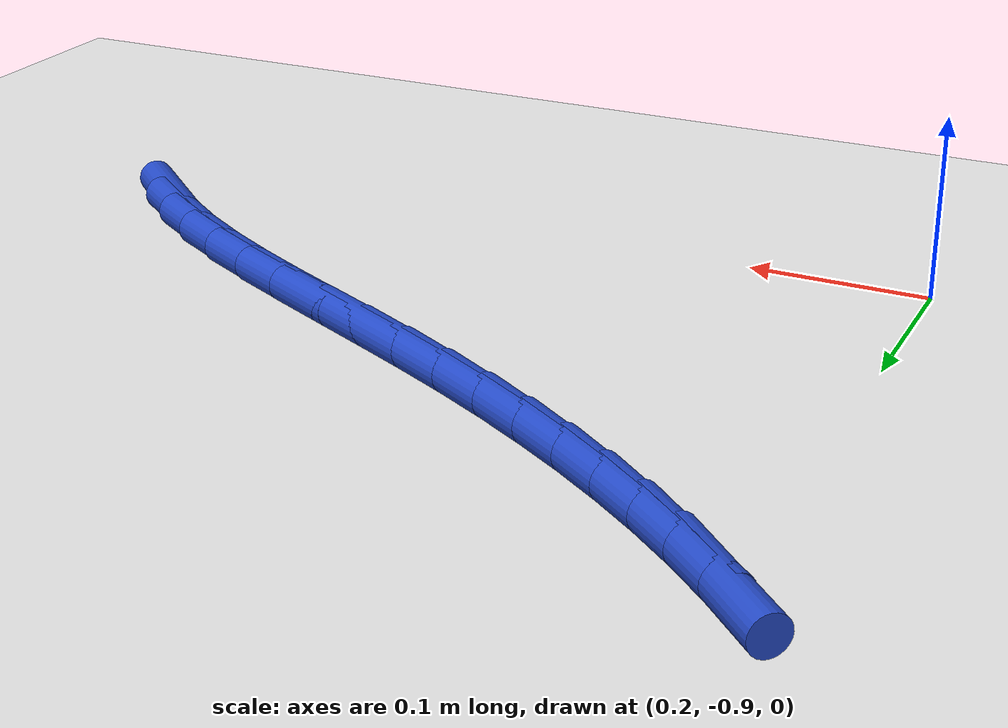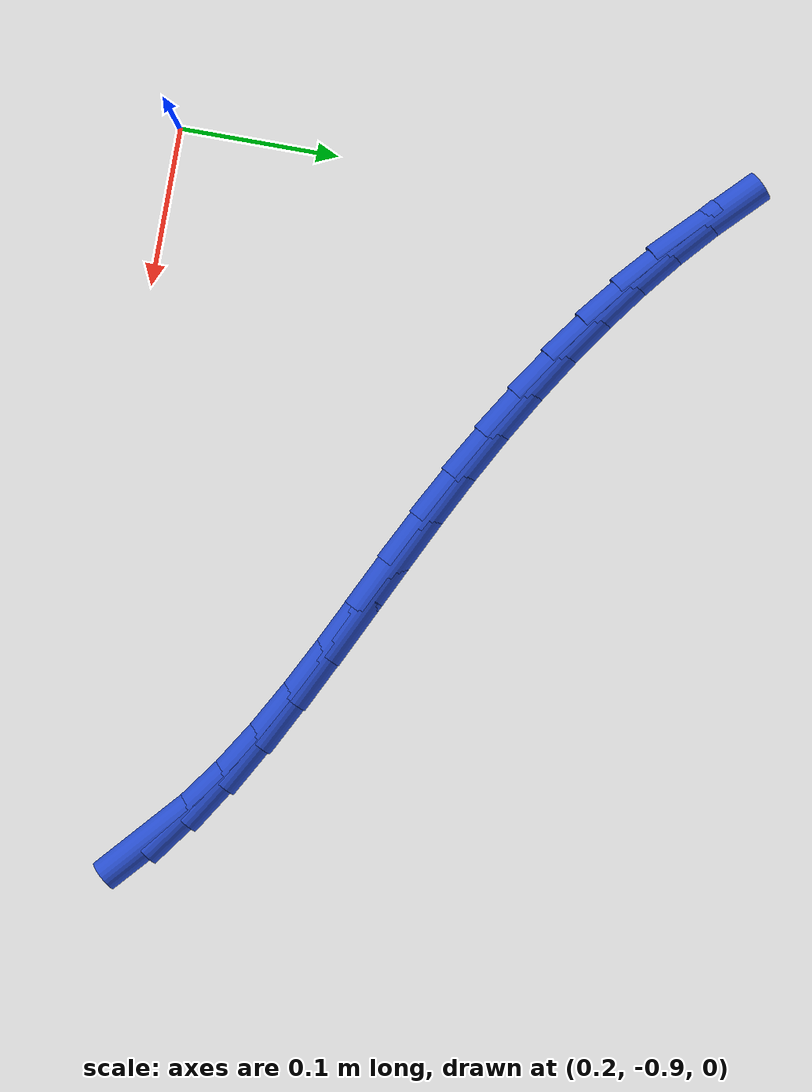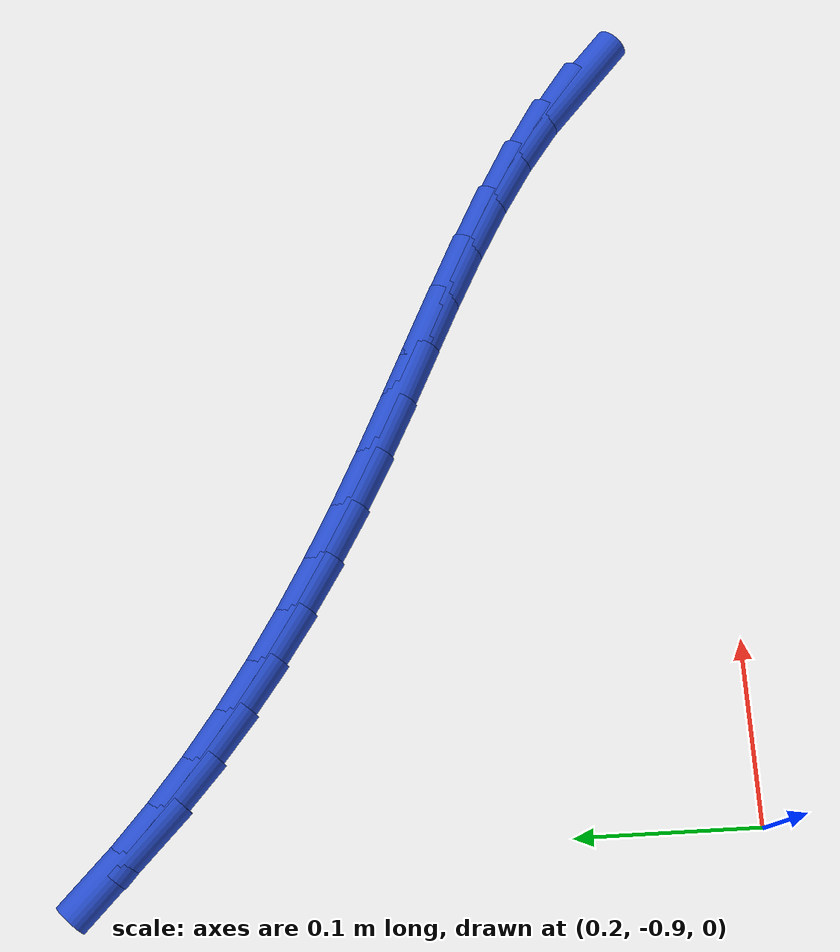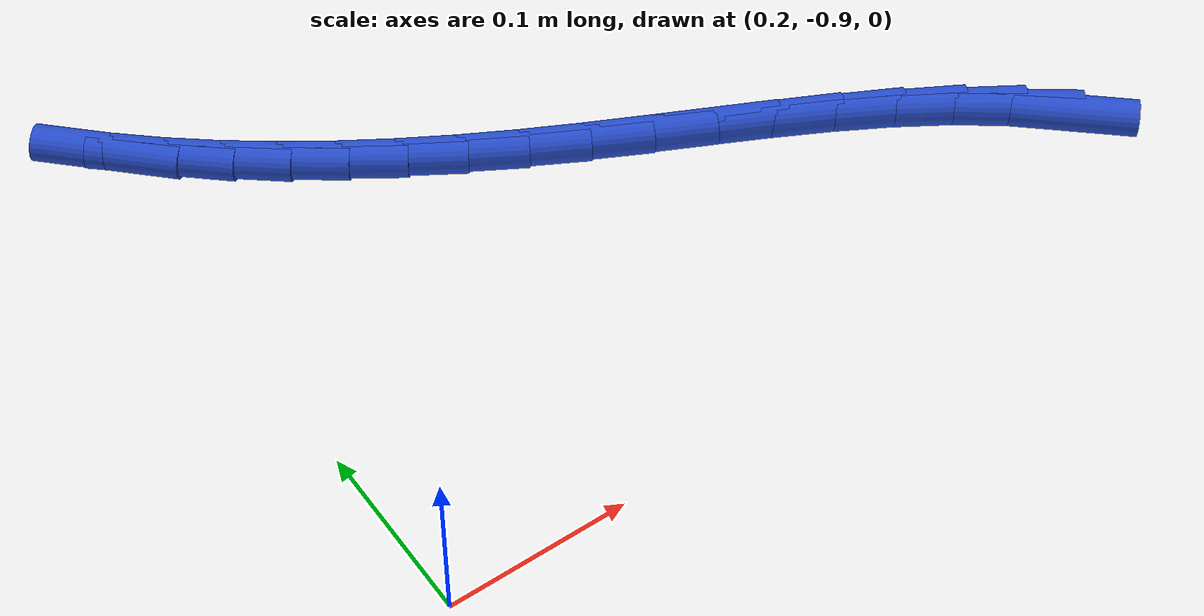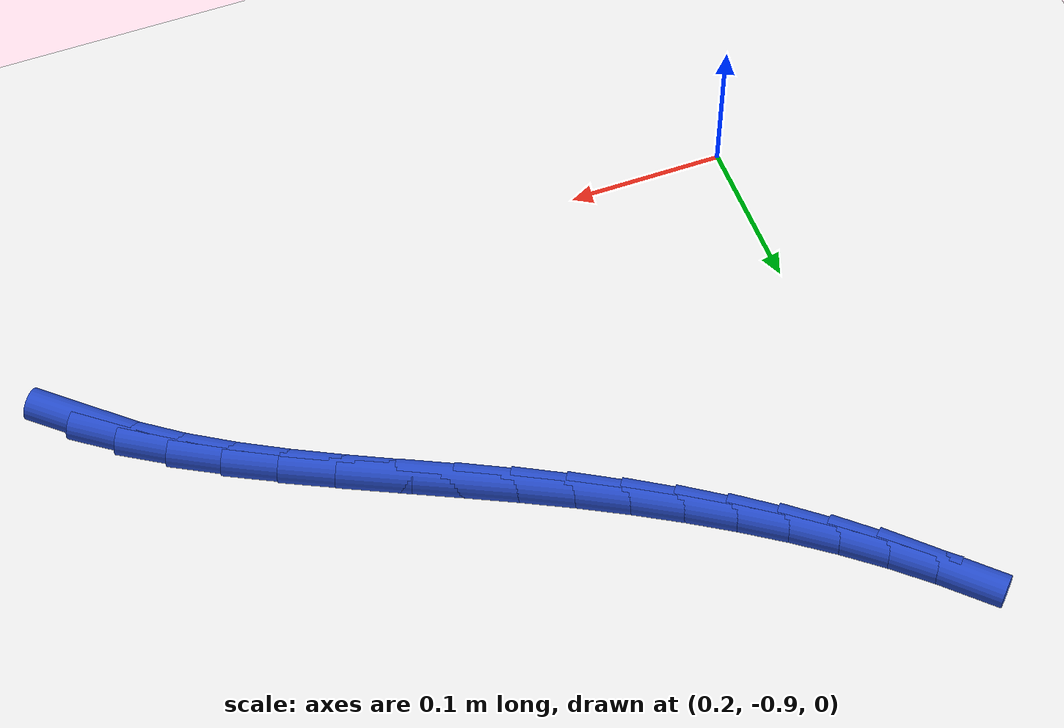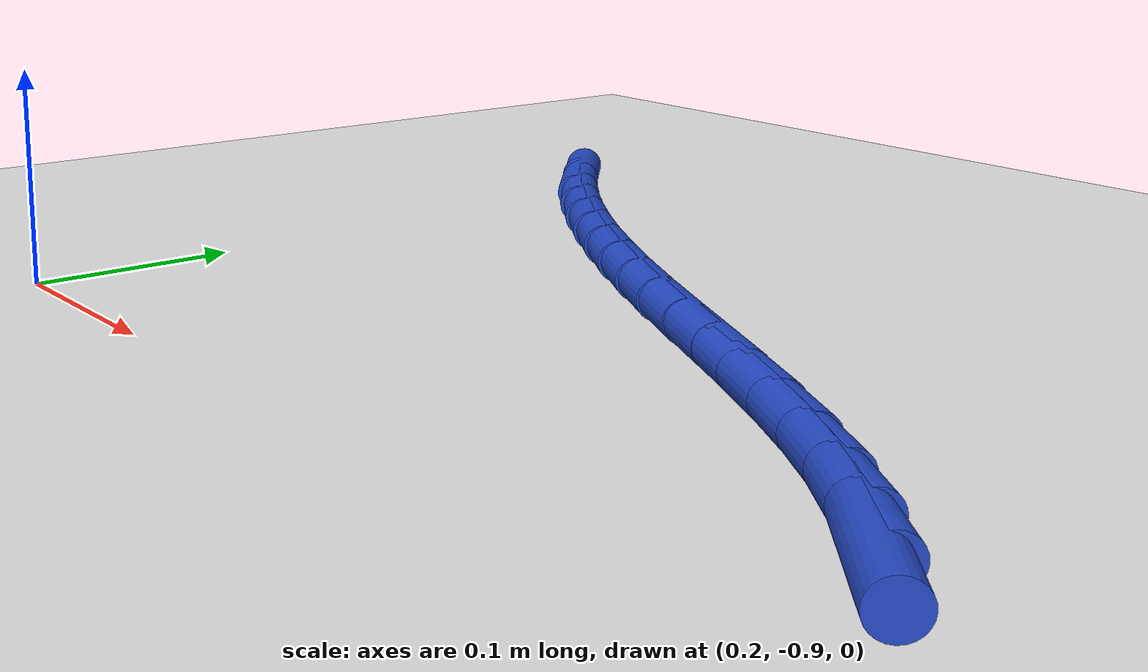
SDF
<sdf version="1.6">
 <world name="default">
  <model name="ground_plane">
   <static>1</static>
   <link name="link">
    <collision name="collision">
     <geometry><plane><normal>0 0 1</normal><size>100 100</size></plane></geometry>
     <surface><friction><ode><mu>100</mu><mu2>50</mu2></ode></friction></surface>
    </collision>
    <visual name="visual">
     <cast_shadows>0</cast_shadows>
     <geometry><plane><normal>0 0 1</normal><size>100 100</size></plane></geometry>
     <material>
      <script><uri>file://media/materials/scripts/gazebo.material</uri><name>Gazebo/WhiteGlow</name></script>
     </material>
    </visual>
   </link>
  </model>
  <model name="line">
   <link name="link_233">
    <pose>0.6339619889091002 -0.8356296457033241 0.01 0 1.57 -0.7258008129332177</pose>
    <collision name="collision">
     <geometry><cylinder><radius>0.01</radius><length>0.08</length></cylinder></geometry>
    </collision>
    <visual name="visual">
     <material>
      <script><name>Gazebo/Blue</name><uri>file://media/materials/scripts/gazebo.material</uri></script>
     </material>
     <geometry><cylinder><radius>0.01</radius><length>0.08</length></cylinder></geometry>
    </visual>
   </link>
   <link name="link_234">
    <pose>0.612295771971148 -0.8164034006389096 0.01 0 1.57 -0.6317629320676033</pose>
    <collision name="collision">
     <geometry><cylinder><radius>0.01</radius><length>0.08</length></cylinder></geometry>
    </collision>
    <visual name="visual">
     <material>
      <script><name>Gazebo/Blue</name><uri>file://media/materials/scripts/gazebo.material</uri></script>
     </material>
     <geometry><cylinder><radius>0.01</radius><length>0.08</length></cylinder></geometry>
    </visual>
   </link>
   <link name="link_235">
    <pose>0.5877244902974321 -0.798421686353868 0.01 0 1.57 -0.5616902228130584</pose>
    <collision name="collision">
     <geometry><cylinder><radius>0.01</radius><length>0.08</length></cylinder></geometry>
    </collision>
    <visual name="visual">
     <material>
      <script><name>Gazebo/Blue</name><uri>file://media/materials/scripts/gazebo.material</uri></script>
     </material>
     <geometry><cylinder><radius>0.01</radius><length>0.08</length></cylinder></geometry>
    </visual>
   </link>
   <link name="link_236">
    <pose>0.5607840354621415 -0.7814678796042983 0.01 0 1.57 -0.5112613267325246</pose>
    <collision name="collision">
     <geometry><cylinder><radius>0.01</radius><length>0.08</length></cylinder></geometry>
    </collision>
    <visual name="visual">
     <material>
      <script><name>Gazebo/Blue</name><uri>file://media/materials/scripts/gazebo.material</uri></script>
     </material>
     <geometry><cylinder><radius>0.01</radius><length>0.08</length></cylinder></geometry>
    </visual>
   </link>
   <link name="link_237">
    <pose>0.5320102990394692 -0.7653253571463029 0.01 0 1.57 -0.47718350887379835</pose>
    <collision name="collision">
     <geometry><cylinder><radius>0.01</radius><length>0.08</length></cylinder></geometry>
    </collision>
    <visual name="visual">
     <material>
      <script><name>Gazebo/Blue</name><uri>file://media/materials/scripts/gazebo.material</uri></script>
     </material>
     <geometry><cylinder><radius>0.01</radius><length>0.08</length></cylinder></geometry>
    </visual>
   </link>
   <link name="link_238">
    <pose>0.5019391726036035 -0.7497774957359811 0.01 0 1.57 -0.45723164717743753</pose>
    <collision name="collision">
     <geometry><cylinder><radius>0.01</radius><length>0.08</length></cylinder></geometry>
    </collision>
    <visual name="visual">
     <material>
      <script><name>Gazebo/Blue</name><uri>file://media/materials/scripts/gazebo.material</uri></script>
     </material>
     <geometry><cylinder><radius>0.01</radius><length>0.08</length></cylinder></geometry>
    </visual>
   </link>
   <link name="link_239">
    <pose>0.4711065477287374 -0.734607672129434 0.01 0 1.57 -0.4501454750513224</pose>
    <collision name="collision">
     <geometry><cylinder><radius>0.01</radius><length>0.08</length></cylinder></geometry>
    </collision>
    <visual name="visual">
     <material>
      <script><name>Gazebo/Blue</name><uri>file://media/materials/scripts/gazebo.material</uri></script>
     </material>
     <geometry><cylinder><radius>0.01</radius><length>0.08</length></cylinder></geometry>
    </visual>
   </link>
   <link name="link_240">
    <pose>0.4400483159890594 -0.719599263082762 0.01 0 1.57 -0.455540217057294</pose>
    <collision name="collision">
     <geometry><cylinder><radius>0.01</radius><length>0.08</length></cylinder></geometry>
    </collision>
    <visual name="visual">
     <material>
      <script><name>Gazebo/Blue</name><uri>file://media/materials/scripts/gazebo.material</uri></script>
     </material>
     <geometry><cylinder><radius>0.01</radius><length>0.08</length></cylinder></geometry>
    </visual>
   </link>
   <link name="link_241">
    <pose>0.4093003689587622 -0.7045356453520661 0.01 0 1.57 -0.4736247766920992</pose>
    <collision name="collision">
     <geometry><cylinder><radius>0.01</radius><length>0.08</length></cylinder></geometry>
    </collision>
    <visual name="visual">
     <material>
      <script><name>Gazebo/Blue</name><uri>file://media/materials/scripts/gazebo.material</uri></script>
     </material>
     <geometry><cylinder><radius>0.01</radius><length>0.08</length></cylinder></geometry>
    </visual>
   </link>
   <link name="link_242">
    <pose>0.3793866388876192 -0.6892038295251098 0.01 0 1.57 -0.49989533543147546</pose>
    <collision name="collision">
     <geometry><cylinder><radius>0.01</radius><length>0.08</length></cylinder></geometry>
    </collision>
    <visual name="visual">
     <material>
      <script><name>Gazebo/Blue</name><uri>file://media/materials/scripts/gazebo.material</uri></script>
     </material>
     <geometry><cylinder><radius>0.01</radius><length>0.08</length></cylinder></geometry>
    </visual>
   </link>
   <link name="link_243">
    <pose>0.3505758875670934 -0.6734683595401033 0.01 0 1.57 -0.5294613139137009</pose>
    <collision name="collision">
     <geometry><cylinder><radius>0.01</radius><length>0.08</length></cylinder></geometry>
    </collision>
    <visual name="visual">
     <material>
      <script><name>Gazebo/Blue</name><uri>file://media/materials/scripts/gazebo.material</uri></script>
     </material>
     <geometry><cylinder><radius>0.01</radius><length>0.08</length></cylinder></geometry>
    </visual>
   </link>
   <link name="link_244">
    <pose>0.32289229236792555 -0.6572680961261983 0.01 0 1.57 -0.5622320891232468</pose>
    <collision name="collision">
     <geometry><cylinder><radius>0.01</radius><length>0.08</length></cylinder></geometry>
    </collision>
    <visual name="visual">
     <material>
      <script><name>Gazebo/Blue</name><uri>file://media/materials/scripts/gazebo.material</uri></script>
     </material>
     <geometry><cylinder><radius>0.01</radius><length>0.08</length></cylinder></geometry>
    </visual>
   </link>
   <link name="link_245">
    <pose>0.2963501897355982 -0.640544890170233 0.01 0 1.57 -0.5982971951297956</pose>
    <collision name="collision">
     <geometry><cylinder><radius>0.01</radius><length>0.08</length></cylinder></geometry>
    </collision>
    <visual name="visual">
     <material>
      <script><name>Gazebo/Blue</name><uri>file://media/materials/scripts/gazebo.material</uri></script>
     </material>
     <geometry><cylinder><radius>0.01</radius><length>0.08</length></cylinder></geometry>
    </visual>
   </link>
   <link name="link_246">
    <pose>0.27096391611559206 -0.6232405925590442 0.01 0 1.57 -0.6377002468814867</pose>
    <collision name="collision">
     <geometry><cylinder><radius>0.01</radius><length>0.08</length></cylinder></geometry>
    </collision>
    <visual name="visual">
     <material>
      <script><name>Gazebo/Blue</name><uri>file://media/materials/scripts/gazebo.material</uri></script>
     </material>
     <geometry><cylinder><radius>0.01</radius><length>0.08</length></cylinder></geometry>
    </visual>
   </link>
   <link name="link_247">
    <pose>0.24674780795338752 -0.6052970541794691 0.01 0 1.57 -0.6804240264993597</pose>
    <collision name="collision">
     <geometry><cylinder><radius>0.01</radius><length>0.08</length></cylinder></geometry>
    </collision>
    <visual name="visual">
     <material>
      <script><name>Gazebo/Blue</name><uri>file://media/materials/scripts/gazebo.material</uri></script>
     </material>
     <geometry><cylinder><radius>0.01</radius><length>0.08</length></cylinder></geometry>
    </visual>
   </link>
   <link name="link_248">
    <pose>0.22371620169446738 -0.586656125918346 0.01 0 1.57 -0.7263752184604313</pose>
    <collision name="collision">
     <geometry><cylinder><radius>0.01</radius><length>0.08</length></cylinder></geometry>
    </collision>
    <visual name="visual">
     <material>
      <script><name>Gazebo/Blue</name><uri>file://media/materials/scripts/gazebo.material</uri></script>
     </material>
     <geometry><cylinder><radius>0.01</radius><length>0.08</length></cylinder></geometry>
    </visual>
   </link>
   <link name="link_249">
    <pose>0.2018834337843114 -0.5672596586625112 0.01 0 1.57 -0.775370572143191</pose>
    <collision name="collision">
     <geometry><cylinder><radius>0.01</radius><length>0.08</length></cylinder></geometry>
    </collision>
    <visual name="visual">
     <material>
      <script><name>Gazebo/Blue</name><uri>file://media/materials/scripts/gazebo.material</uri></script>
     </material>
     <geometry><cylinder><radius>0.01</radius><length>0.08</length></cylinder></geometry>
    </visual>
   </link>
  </model>
 </world>
</sdf>
